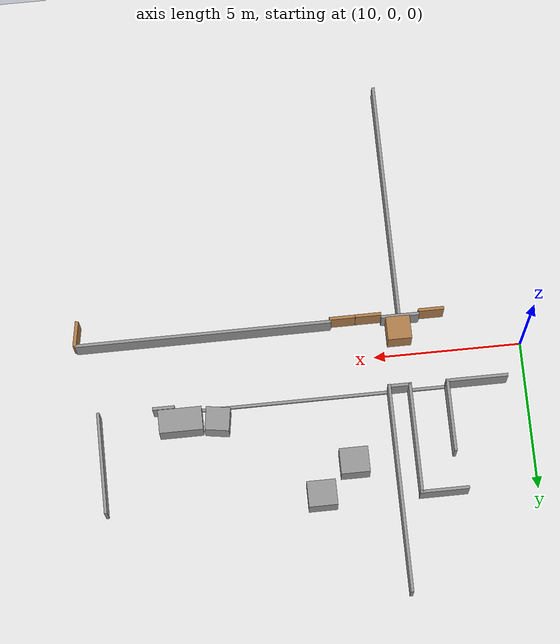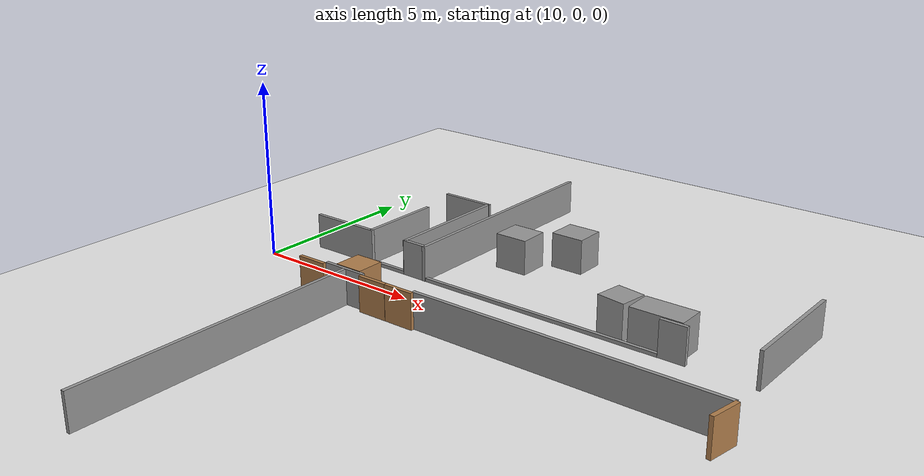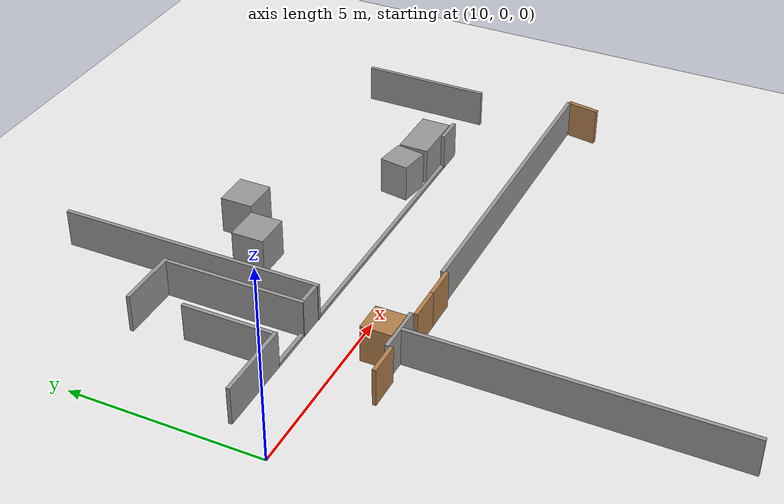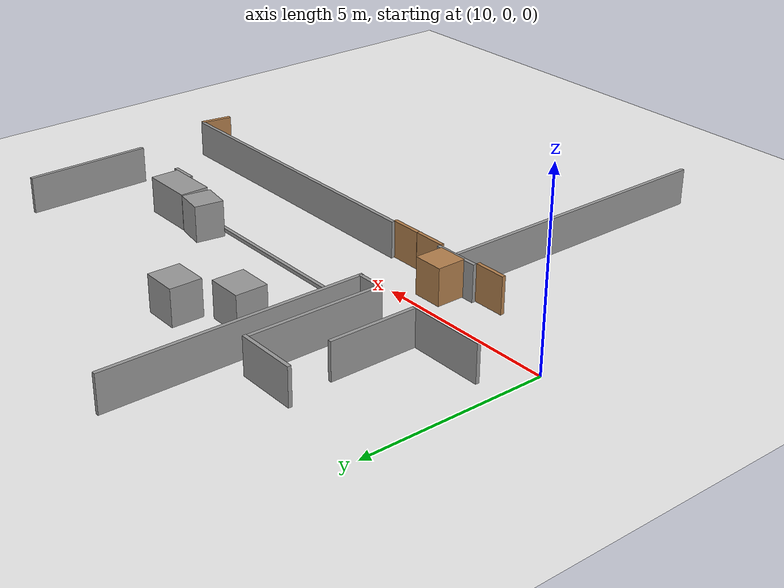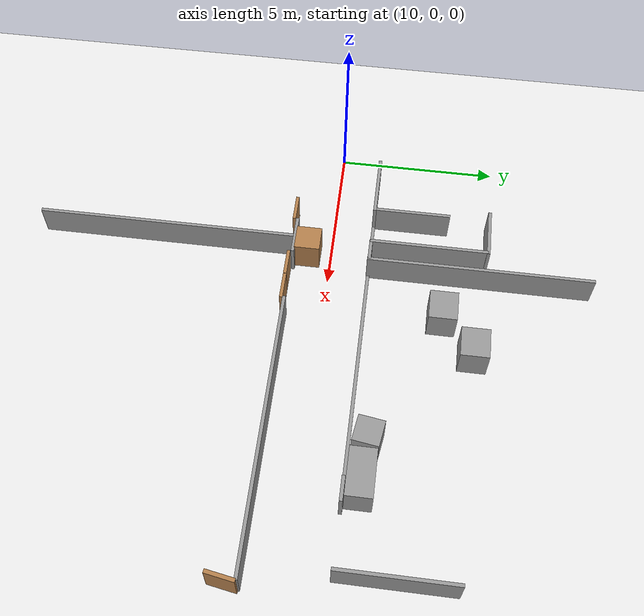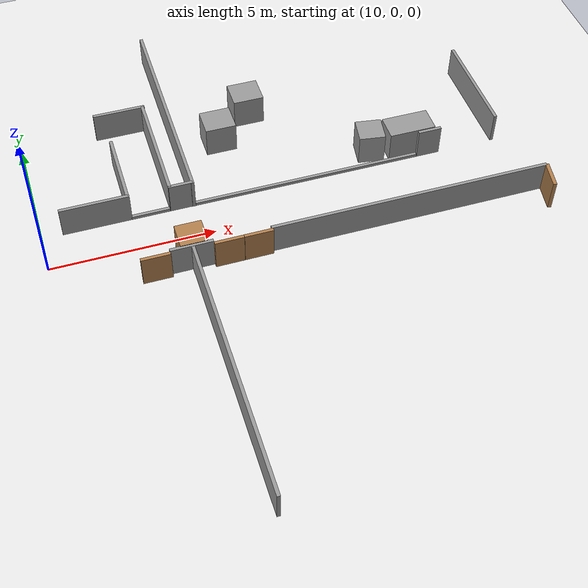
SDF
<sdf version="1.6">
 <world name="default">
  <model name="ground_plane">
   <static>1</static>
   <link name="link">
    <collision name="collision">
     <geometry><plane><normal>0 0 1</normal><size>100 100</size></plane></geometry>
     <surface><friction><ode><mu>100</mu><mu2>50</mu2></ode></friction></surface>
    </collision>
    <visual name="visual">
     <cast_shadows>0</cast_shadows>
     <geometry><plane><normal>0 0 1</normal><size>100 100</size></plane></geometry>
     <material>
      <script><uri>file://media/materials/scripts/gazebo.material</uri><name>Gazebo/WhiteGlow</name></script>
     </material>
    </visual>
   </link>
  </model>
  <model name="L81">
   <link name="link_1_clone_0">
    <pose>15.4924 40.2967 0.017394 0 -0 0</pose>
    <inertial>
     <mass>1.15579</mass>
     <inertia>
      <ixx>0.302392</ixx>
      <ixy>0</ixy>
      <ixz>0</ixz>
      <iyy>0.15645</iyy>
      <iyz>0</iyz>
      <izz>0.266211</izz>
     </inertia>
    </inertial>
    <visual name="visual">
     <geometry><box><size>0.790159 1.46273 1</size></box></geometry>
     <material>
      <lighting>1</lighting>
      <script><uri>file://media/materials/scripts/gazebo.material</uri><name>Gazebo/Grey</name></script>
      <shader type="pixel"><normal_map>__default__</normal_map></shader>
      <ambient>0.3 0.3 0.3 1</ambient>
      <diffuse>0.7 0.7 0.7 1</diffuse>
      <specular>0.01 0.01 0.01 1</specular>
      <emissive>0 0 0 1</emissive>
     </material>
    </visual>
    <collision name="collision">
     <geometry><box><size>0.790159 1.46273 1</size></box></geometry>
     <surface>
      <friction>
       <ode><mu>1</mu><mu2>1</mu2><fdir1>0 0 0</fdir1><slip1>0</slip1><slip2>0</slip2></ode>
       <torsional>
        <coefficient>1</coefficient>
        <patch_radius>0</patch_radius>
        <surface_radius>0</surface_radius>
        <use_patch_radius>1</use_patch_radius>
        <ode><slip>0</slip></ode>
       </torsional>
      </friction>
      <bounce><restitution_coefficient>0</restitution_coefficient><threshold>1e+06</threshold></bounce>
      <contact>
       <collide_without_contact>0</collide_without_contact>
       <collide_without_contact_bitmask>1</collide_without_contact_bitmask>
       <collide_bitmask>1</collide_bitmask>
       <ode>
        <soft_cfm>0</soft_cfm>
        <soft_erp>0.2</soft_erp>
        <kp>1e+13</kp>
        <kd>1</kd>
        <max_vel>0.01</max_vel>
        <min_depth>0</min_depth>
       </ode>
       <bullet>
        <split_impulse>1</split_impulse>
        <split_impulse_penetration_threshold>-0.01</split_impulse_penetration_threshold>
        <soft_cfm>0</soft_cfm>
        <soft_erp>0.2</soft_erp>
        <kp>1e+13</kp>
        <kd>1</kd>
       </bullet>
      </contact>
     </surface>
    </collision>
   </link>
   <link name="link_1_clone_1">
    <pose>15.407 39.061 0.017394 0 -0 -0.15142</pose>
    <inertial>
     <mass>0.639519</mass>
     <inertia>
      <ixx>0.0882035</ixx>
      <ixy>0</ixy>
      <ixz>0</ixz>
      <iyy>0.086567</iyy>
      <iyz>0</iyz>
      <izz>0.068184</izz>
     </inertia>
    </inertial>
    <visual name="visual">
     <geometry><box><size>0.790159 0.809357 1</size></box></geometry>
     <material>
      <lighting>1</lighting>
      <script><uri>file://media/materials/scripts/gazebo.material</uri><name>Gazebo/Grey</name></script>
      <shader type="pixel"><normal_map>__default__</normal_map></shader>
      <ambient>0.3 0.3 0.3 1</ambient>
      <diffuse>0.7 0.7 0.7 1</diffuse>
      <specular>0.01 0.01 0.01 1</specular>
      <emissive>0 0 0 1</emissive>
     </material>
    </visual>
    <collision name="collision">
     <geometry><box><size>0.790159 0.809357 1</size></box></geometry>
     <surface>
      <friction>
       <ode><mu>1</mu><mu2>1</mu2><fdir1>0 0 0</fdir1><slip1>0</slip1><slip2>0</slip2></ode>
       <torsional>
        <coefficient>1</coefficient>
        <patch_radius>0</patch_radius>
        <surface_radius>0</surface_radius>
        <use_patch_radius>1</use_patch_radius>
        <ode><slip>0</slip></ode>
       </torsional>
      </friction>
      <bounce><restitution_coefficient>0</restitution_coefficient><threshold>1e+06</threshold></bounce>
      <contact>
       <collide_without_contact>0</collide_without_contact>
       <collide_without_contact_bitmask>1</collide_without_contact_bitmask>
       <collide_bitmask>1</collide_bitmask>
       <ode>
        <soft_cfm>0</soft_cfm>
        <soft_erp>0.2</soft_erp>
        <kp>1e+13</kp>
        <kd>1</kd>
        <max_vel>0.01</max_vel>
        <min_depth>0</min_depth>
       </ode>
       <bullet>
        <split_impulse>1</split_impulse>
        <split_impulse_penetration_threshold>-0.01</split_impulse_penetration_threshold>
        <soft_cfm>0</soft_cfm>
        <soft_erp>0.2</soft_erp>
        <kp>1e+13</kp>
        <kd>1</kd>
       </bullet>
      </contact>
     </surface>
    </collision>
   </link>
   <link name="link_1_clone_2">
    <pose>17.9179 32.7201 0.017394 0 -0 0</pose>
    <inertial>
     <mass>0.639519</mass>
     <inertia>
      <ixx>0.0882035</ixx>
      <ixy>0</ixy>
      <ixz>0</ixz>
      <iyy>0.086567</iyy>
      <iyz>0</iyz>
      <izz>0.068184</izz>
     </inertia>
    </inertial>
    <visual name="visual">
     <geometry><box><size>0.790159 0.809357 1</size></box></geometry>
     <material>
      <lighting>1</lighting>
      <script><uri>file://media/materials/scripts/gazebo.material</uri><name>Gazebo/Wood</name></script>
      <shader type="pixel"><normal_map>__default__</normal_map></shader>
      <ambient>0.3 0.3 0.3 1</ambient>
      <diffuse>0.7 0.7 0.7 1</diffuse>
      <specular>0.01 0.01 0.01 1</specular>
      <emissive>0 0 0 1</emissive>
     </material>
    </visual>
    <collision name="collision">
     <geometry><box><size>0.790159 0.809357 1</size></box></geometry>
     <surface>
      <friction>
       <ode><mu>1</mu><mu2>1</mu2><fdir1>0 0 0</fdir1><slip1>0</slip1><slip2>0</slip2></ode>
       <torsional>
        <coefficient>1</coefficient>
        <patch_radius>0</patch_radius>
        <surface_radius>0</surface_radius>
        <use_patch_radius>1</use_patch_radius>
        <ode><slip>0</slip></ode>
       </torsional>
      </friction>
      <bounce><restitution_coefficient>0</restitution_coefficient><threshold>1e+06</threshold></bounce>
      <contact>
       <collide_without_contact>0</collide_without_contact>
       <collide_without_contact_bitmask>1</collide_without_contact_bitmask>
       <collide_bitmask>1</collide_bitmask>
       <ode>
        <soft_cfm>0</soft_cfm>
        <soft_erp>0.2</soft_erp>
        <kp>1e+13</kp>
        <kd>1</kd>
        <max_vel>0.01</max_vel>
        <min_depth>0</min_depth>
       </ode>
       <bullet>
        <split_impulse>1</split_impulse>
        <split_impulse_penetration_threshold>-0.01</split_impulse_penetration_threshold>
        <soft_cfm>0</soft_cfm>
        <soft_erp>0.2</soft_erp>
        <kp>1e+13</kp>
        <kd>1</kd>
       </bullet>
      </contact>
     </surface>
    </collision>
   </link>
   <link name="link_clone_0_clone_0_clone_clone_0">
    <pose>18.3442 32.63 -0 0 -0 0</pose>
    <inertial>
     <mass>0.0720999</mass>
     <inertia>
      <ixx>0.0158378</ixx>
      <ixy>0</ixy>
      <ixz>0</ixz>
      <iyy>0.00606841</iyy>
      <iyz>0</iyz>
      <izz>0.00988954</izz>
     </inertia>
    </inertial>
    <visual name="visual">
     <geometry><box><size>0.1 1.27905 1</size></box></geometry>
     <material>
      <script><name>Gazebo/Grey</name><uri>file://media/materials/scripts/gazebo.material</uri></script>
      <shader type="pixel"><normal_map>__default__</normal_map></shader>
      <ambient>0.3 0.3 0.3 1</ambient>
      <diffuse>0.7 0.7 0.7 1</diffuse>
      <specular>0.01 0.01 0.01 1</specular>
      <emissive>0 0 0 1</emissive>
     </material>
    </visual>
    <collision name="collision">
     <geometry><box><size>0.1 1.27905 1</size></box></geometry>
     <surface>
      <friction>
       <ode><mu>1</mu><mu2>1</mu2><fdir1>0 0 0</fdir1><slip1>0</slip1><slip2>0</slip2></ode>
       <torsional>
        <coefficient>1</coefficient>
        <patch_radius>0</patch_radius>
        <surface_radius>0</surface_radius>
        <use_patch_radius>1</use_patch_radius>
        <ode><slip>0</slip></ode>
       </torsional>
      </friction>
      <bounce><restitution_coefficient>0</restitution_coefficient><threshold>1e+06</threshold></bounce>
      <contact>
       <collide_without_contact>0</collide_without_contact>
       <collide_without_contact_bitmask>1</collide_without_contact_bitmask>
       <collide_bitmask>1</collide_bitmask>
       <ode>
        <soft_cfm>0</soft_cfm>
        <soft_erp>0.2</soft_erp>
        <kp>1e+13</kp>
        <kd>1</kd>
        <max_vel>0.01</max_vel>
        <min_depth>0</min_depth>
       </ode>
       <bullet>
        <split_impulse>1</split_impulse>
        <split_impulse_penetration_threshold>-0.01</split_impulse_penetration_threshold>
        <soft_cfm>0</soft_cfm>
        <soft_erp>0.2</soft_erp>
        <kp>1e+13</kp>
        <kd>1</kd>
       </bullet>
      </contact>
     </surface>
    </collision>
   </link>
   <link name="link_clone_0_clone_0_clone_clone_clone_clone">
    <pose>18.3589 39.2844 -0 0 -0 0</pose>
    <inertial>
     <mass>0.486482</mass>
     <inertia>
      <ixx>3.05999</ixx>
      <ixy>0</ixy>
      <ixz>0</ixz>
      <iyy>0.0409455</iyy>
      <iyz>0</iyz>
      <izz>3.01985</izz>
     </inertia>
    </inertial>
    <visual name="visual">
     <geometry><box><size>0.1 8.63021 1</size></box></geometry>
     <material>
      <script><name>Gazebo/Grey</name><uri>file://media/materials/scripts/gazebo.material</uri></script>
      <shader type="pixel"><normal_map>__default__</normal_map></shader>
      <ambient>0.3 0.3 0.3 1</ambient>
      <diffuse>0.7 0.7 0.7 1</diffuse>
      <specular>0.01 0.01 0.01 1</specular>
      <emissive>0 0 0 1</emissive>
     </material>
    </visual>
    <collision name="collision">
     <geometry><box><size>0.1 8.63021 1</size></box></geometry>
     <surface>
      <friction>
       <ode><mu>1</mu><mu2>1</mu2><fdir1>0 0 0</fdir1><slip1>0</slip1><slip2>0</slip2></ode>
       <torsional>
        <coefficient>1</coefficient>
        <patch_radius>0</patch_radius>
        <surface_radius>0</surface_radius>
        <use_patch_radius>1</use_patch_radius>
        <ode><slip>0</slip></ode>
       </torsional>
      </friction>
      <bounce><restitution_coefficient>0</restitution_coefficient><threshold>1e+06</threshold></bounce>
      <contact>
       <collide_without_contact>0</collide_without_contact>
       <collide_without_contact_bitmask>1</collide_without_contact_bitmask>
       <collide_bitmask>1</collide_bitmask>
       <ode>
        <soft_cfm>0</soft_cfm>
        <soft_erp>0.2</soft_erp>
        <kp>1e+13</kp>
        <kd>1</kd>
        <max_vel>0.01</max_vel>
        <min_depth>0</min_depth>
       </ode>
       <bullet>
        <split_impulse>1</split_impulse>
        <split_impulse_penetration_threshold>-0.01</split_impulse_penetration_threshold>
        <soft_cfm>0</soft_cfm>
        <soft_erp>0.2</soft_erp>
        <kp>1e+13</kp>
        <kd>1</kd>
       </bullet>
      </contact>
     </surface>
    </collision>
   </link>
   <link name="link_clone_0_clone_clone_0_clone_clone_clone_1_clone">
    <pose>15.943 30.3086 0 0 -0 0</pose>
    <inertial>
     <mass>1.01517</mass>
     <inertia><ixx>5.4708</ixx><ixy>0</ixy><ixz>0</ixz><iyy>0.0854436</iyy><iyz>0</iyz><izz>5.38705</izz></inertia>
    </inertial>
    <visual name="visual">
     <geometry><box><size>0.1 2.09 1</size></box></geometry>
     <material>
      <script><name>Gazebo/Grey</name><uri>file://media/materials/scripts/gazebo.material</uri></script>
      <shader type="pixel"><normal_map>__default__</normal_map></shader>
      <ambient>0.3 0.3 0.3 1</ambient>
      <diffuse>0.7 0.7 0.7 1</diffuse>
      <specular>0.01 0.01 0.01 1</specular>
      <emissive>0 0 0 1</emissive>
     </material>
    </visual>
    <collision name="collision">
     <geometry><box><size>0.1 2.09 1</size></box></geometry>
     <surface>
      <friction>
       <ode><mu>1</mu><mu2>1</mu2><fdir1>0 0 0</fdir1><slip1>0</slip1><slip2>0</slip2></ode>
       <torsional>
        <coefficient>1</coefficient>
        <patch_radius>0</patch_radius>
        <surface_radius>0</surface_radius>
        <use_patch_radius>1</use_patch_radius>
        <ode><slip>0</slip></ode>
       </torsional>
      </friction>
      <bounce><restitution_coefficient>0</restitution_coefficient><threshold>1e+06</threshold></bounce>
      <contact>
       <collide_without_contact>0</collide_without_contact>
       <collide_without_contact_bitmask>1</collide_without_contact_bitmask>
       <collide_bitmask>1</collide_bitmask>
       <ode>
        <soft_cfm>0</soft_cfm>
        <soft_erp>0.2</soft_erp>
        <kp>1e+13</kp>
        <kd>1</kd>
        <max_vel>0.01</max_vel>
        <min_depth>0</min_depth>
       </ode>
       <bullet>
        <split_impulse>1</split_impulse>
        <split_impulse_penetration_threshold>-0.01</split_impulse_penetration_threshold>
        <soft_cfm>0</soft_cfm>
        <soft_erp>0.2</soft_erp>
        <kp>1e+13</kp>
        <kd>1</kd>
       </bullet>
      </contact>
     </surface>
    </collision>
   </link>
   <link name="link_clone_0_clone_clone_0_clone_clone_clone_1_clone_0">
    <pose>15.9456 32.8938 0 0 -0 0</pose>
    <inertial>
     <mass>0.262825</mass>
     <inertia>
      <ixx>0.0337428</ixx>
      <ixy>0</ixy>
      <ixz>0</ixz>
      <iyy>0.0221211</iyy>
      <iyz>0</iyz>
      <izz>0.0120597</izz>
     </inertia>
    </inertial>
    <visual name="visual">
     <geometry><box><size>0.1 0.735267 1</size></box></geometry>
     <material>
      <script><name>Gazebo/Grey</name><uri>file://media/materials/scripts/gazebo.material</uri></script>
      <shader type="pixel"><normal_map>__default__</normal_map></shader>
      <ambient>0.3 0.3 0.3 1</ambient>
      <diffuse>0.7 0.7 0.7 1</diffuse>
      <specular>0.01 0.01 0.01 1</specular>
      <emissive>0 0 0 1</emissive>
     </material>
    </visual>
    <collision name="collision">
     <geometry><box><size>0.1 0.735267 1</size></box></geometry>
     <surface>
      <friction>
       <ode><mu>1</mu><mu2>1</mu2><fdir1>0 0 0</fdir1><slip1>0</slip1><slip2>0</slip2></ode>
       <torsional>
        <coefficient>1</coefficient>
        <patch_radius>0</patch_radius>
        <surface_radius>0</surface_radius>
        <use_patch_radius>1</use_patch_radius>
        <ode><slip>0</slip></ode>
       </torsional>
      </friction>
      <bounce><restitution_coefficient>0</restitution_coefficient><threshold>1e+06</threshold></bounce>
      <contact>
       <collide_without_contact>0</collide_without_contact>
       <collide_without_contact_bitmask>1</collide_without_contact_bitmask>
       <collide_bitmask>1</collide_bitmask>
       <ode>
        <soft_cfm>0</soft_cfm>
        <soft_erp>0.2</soft_erp>
        <kp>1e+13</kp>
        <kd>1</kd>
        <max_vel>0.01</max_vel>
        <min_depth>0</min_depth>
       </ode>
       <bullet>
        <split_impulse>1</split_impulse>
        <split_impulse_penetration_threshold>-0.01</split_impulse_penetration_threshold>
        <soft_cfm>0</soft_cfm>
        <soft_erp>0.2</soft_erp>
        <kp>1e+13</kp>
        <kd>1</kd>
       </bullet>
      </contact>
     </surface>
    </collision>
   </link>
   <link name="link_clone_0_clone_clone_0_clone_clone_clone_1_clone_0_clone">
    <pose>15.9496 40.8197 -0 0 -0 0</pose>
    <inertial>
     <mass>0.262825</mass>
     <inertia>
      <ixx>0.0337428</ixx>
      <ixy>0</ixy>
      <ixz>0</ixz>
      <iyy>0.0221211</iyy>
      <iyz>0</iyz>
      <izz>0.0120597</izz>
     </inertia>
    </inertial>
    <visual name="visual">
     <geometry><box><size>0.1 0.735267 1</size></box></geometry>
     <material>
      <script><name>Gazebo/Grey</name><uri>file://media/materials/scripts/gazebo.material</uri></script>
      <shader type="pixel"><normal_map>__default__</normal_map></shader>
      <ambient>0.3 0.3 0.3 1</ambient>
      <diffuse>0.7 0.7 0.7 1</diffuse>
      <specular>0.01 0.01 0.01 1</specular>
      <emissive>0 0 0 1</emissive>
     </material>
    </visual>
    <collision name="collision">
     <geometry><box><size>0.1 0.735267 1</size></box></geometry>
     <surface>
      <friction>
       <ode><mu>1</mu><mu2>1</mu2><fdir1>0 0 0</fdir1><slip1>0</slip1><slip2>0</slip2></ode>
       <torsional>
        <coefficient>1</coefficient>
        <patch_radius>0</patch_radius>
        <surface_radius>0</surface_radius>
        <use_patch_radius>1</use_patch_radius>
        <ode><slip>0</slip></ode>
       </torsional>
      </friction>
      <bounce><restitution_coefficient>0</restitution_coefficient><threshold>1e+06</threshold></bounce>
      <contact>
       <collide_without_contact>0</collide_without_contact>
       <collide_without_contact_bitmask>1</collide_without_contact_bitmask>
       <collide_bitmask>1</collide_bitmask>
       <ode>
        <soft_cfm>0</soft_cfm>
        <soft_erp>0.2</soft_erp>
        <kp>1e+13</kp>
        <kd>1</kd>
        <max_vel>0.01</max_vel>
        <min_depth>0</min_depth>
       </ode>
       <bullet>
        <split_impulse>1</split_impulse>
        <split_impulse_penetration_threshold>-0.01</split_impulse_penetration_threshold>
        <soft_cfm>0</soft_cfm>
        <soft_erp>0.2</soft_erp>
        <kp>1e+13</kp>
        <kd>1</kd>
       </bullet>
      </contact>
     </surface>
    </collision>
   </link>
   <link name="link_clone_0_clone_clone_0_clone_clone_clone_1_clone_0_clone_clone">
    <pose>15.9465 36.8536 -0.45475 0 -0 0</pose>
    <inertial>
     <mass>2.56764</mass>
     <inertia><ixx>11.2543</ixx><ixy>0</ixy><ixz>0</ixz><iyy>0.21611</iyy><iyz>0</iyz><izz>11.0424</izz></inertia>
    </inertial>
    <visual name="visual">
     <geometry><box><size>0.1 7.18313 0.1</size></box></geometry>
     <material>
      <script><name>Gazebo/Grey</name><uri>file://media/materials/scripts/gazebo.material</uri></script>
      <shader type="pixel"><normal_map>__default__</normal_map></shader>
      <ambient>0.3 0.3 0.3 1</ambient>
      <diffuse>0.7 0.7 0.7 1</diffuse>
      <specular>0.01 0.01 0.01 1</specular>
      <emissive>0 0 0 1</emissive>
     </material>
    </visual>
    <collision name="collision">
     <geometry><box><size>0.1 7.18313 0.1</size></box></geometry>
     <surface>
      <friction>
       <ode><mu>1</mu><mu2>1</mu2><fdir1>0 0 0</fdir1><slip1>0</slip1><slip2>0</slip2></ode>
       <torsional>
        <coefficient>1</coefficient>
        <patch_radius>0</patch_radius>
        <surface_radius>0</surface_radius>
        <use_patch_radius>1</use_patch_radius>
        <ode><slip>0</slip></ode>
       </torsional>
      </friction>
      <bounce><restitution_coefficient>0</restitution_coefficient><threshold>1e+06</threshold></bounce>
      <contact>
       <collide_without_contact>0</collide_without_contact>
       <collide_without_contact_bitmask>1</collide_without_contact_bitmask>
       <collide_bitmask>1</collide_bitmask>
       <ode>
        <soft_cfm>0</soft_cfm>
        <soft_erp>0.2</soft_erp>
        <kp>1e+13</kp>
        <kd>1</kd>
        <max_vel>0.01</max_vel>
        <min_depth>0</min_depth>
       </ode>
       <bullet>
        <split_impulse>1</split_impulse>
        <split_impulse_penetration_threshold>-0.01</split_impulse_penetration_threshold>
        <soft_cfm>0</soft_cfm>
        <soft_erp>0.2</soft_erp>
        <kp>1e+13</kp>
        <kd>1</kd>
       </bullet>
      </contact>
     </surface>
    </collision>
   </link>
   <link name="link_clone_0_clone_clone_0_clone_clone_clone_1_clone_0_clone_clone_clone_2_clone_0">
    <pose>15.9435 31.9245 -0.451727 0 -0 0</pose>
    <inertial>
     <mass>0.421538</mass>
     <inertia>
      <ixx>0.0839802</ixx>
      <ixy>0</ixy>
      <ixz>0</ixz>
      <iyy>0.0354794</iyy>
      <iyz>0</iyz>
      <izz>0.0492034</izz>
     </inertia>
    </inertial>
    <visual name="visual">
     <geometry><box><size>0.1 1.17927 0.1</size></box></geometry>
     <material>
      <script><name>Gazebo/Grey</name><uri>file://media/materials/scripts/gazebo.material</uri></script>
      <shader type="pixel"><normal_map>__default__</normal_map></shader>
      <ambient>0.3 0.3 0.3 1</ambient>
      <diffuse>0.7 0.7 0.7 1</diffuse>
      <specular>0.01 0.01 0.01 1</specular>
      <emissive>0 0 0 1</emissive>
     </material>
    </visual>
    <collision name="collision">
     <geometry><box><size>0.1 1.17927 0.1</size></box></geometry>
     <surface>
      <friction>
       <ode><mu>1</mu><mu2>1</mu2><fdir1>0 0 0</fdir1><slip1>0</slip1><slip2>0</slip2></ode>
       <torsional>
        <coefficient>1</coefficient>
        <patch_radius>0</patch_radius>
        <surface_radius>0</surface_radius>
        <use_patch_radius>1</use_patch_radius>
        <ode><slip>0</slip></ode>
       </torsional>
      </friction>
      <bounce><restitution_coefficient>0</restitution_coefficient><threshold>1e+06</threshold></bounce>
      <contact>
       <collide_without_contact>0</collide_without_contact>
       <collide_without_contact_bitmask>1</collide_without_contact_bitmask>
       <collide_bitmask>1</collide_bitmask>
       <ode>
        <soft_cfm>0</soft_cfm>
        <soft_erp>0.2</soft_erp>
        <kp>1e+13</kp>
        <kd>1</kd>
        <max_vel>0.01</max_vel>
        <min_depth>0</min_depth>
       </ode>
       <bullet>
        <split_impulse>1</split_impulse>
        <split_impulse_penetration_threshold>-0.01</split_impulse_penetration_threshold>
        <soft_cfm>0</soft_cfm>
        <soft_erp>0.2</soft_erp>
        <kp>1e+13</kp>
        <kd>1</kd>
       </bullet>
      </contact>
     </surface>
    </collision>
   </link>
   <link name="link_clone_0_clone_clone_0_clone_clone_clone_1_clone_1_clone_clone_clone_0">
    <pose>12.2836 31.8092 0 0 -0 0</pose>
    <inertial>
     <mass>0.247554</mass>
     <inertia>
      <ixx>0.0756975</ixx>
      <ixy>0</ixy>
      <ixz>0</ixz>
      <iyy>0.0208358</iyy>
      <iyz>0</iyz>
      <izz>0.0552744</izz>
     </inertia>
    </inertial>
    <visual name="visual">
     <geometry><box><size>0.1 1.63383 1</size></box></geometry>
     <material>
      <script><name>Gazebo/Grey</name><uri>file://media/materials/scripts/gazebo.material</uri></script>
      <shader type="pixel"><normal_map>__default__</normal_map></shader>
      <ambient>0.3 0.3 0.3 1</ambient>
      <diffuse>0.7 0.7 0.7 1</diffuse>
      <specular>0.01 0.01 0.01 1</specular>
      <emissive>0 0 0 1</emissive>
     </material>
    </visual>
    <collision name="collision">
     <geometry><box><size>0.1 1.63383 1</size></box></geometry>
     <surface>
      <friction>
       <ode><mu>1</mu><mu2>1</mu2><fdir1>0 0 0</fdir1><slip1>0</slip1><slip2>0</slip2></ode>
       <torsional>
        <coefficient>1</coefficient>
        <patch_radius>0</patch_radius>
        <surface_radius>0</surface_radius>
        <use_patch_radius>1</use_patch_radius>
        <ode><slip>0</slip></ode>
       </torsional>
      </friction>
      <bounce><restitution_coefficient>0</restitution_coefficient><threshold>1e+06</threshold></bounce>
      <contact>
       <collide_without_contact>0</collide_without_contact>
       <collide_without_contact_bitmask>1</collide_without_contact_bitmask>
       <collide_bitmask>1</collide_bitmask>
       <ode>
        <soft_cfm>0</soft_cfm>
        <soft_erp>0.2</soft_erp>
        <kp>1e+13</kp>
        <kd>1</kd>
        <max_vel>0.01</max_vel>
        <min_depth>0</min_depth>
       </ode>
       <bullet>
        <split_impulse>1</split_impulse>
        <split_impulse_penetration_threshold>-0.01</split_impulse_penetration_threshold>
        <soft_cfm>0</soft_cfm>
        <soft_erp>0.2</soft_erp>
        <kp>1e+13</kp>
        <kd>1</kd>
       </bullet>
      </contact>
     </surface>
    </collision>
   </link>
   <link name="link_clone_0_clone_clone_0_clone_clone_clone_2_clone_clone_0_clone_3_clone">
    <pose>13.5651 34.6726 0 0 -0 0</pose>
    <inertial>
     <mass>9.70174</mass>
     <inertia><ixx>1.55976</ixx><ixy>0</ixy><ixz>0</ixz><iyy>1.40994</iyy><iyz>0</iyz><izz>1.35274</izz></inertia>
    </inertial>
    <visual name="visual">
     <geometry><box><size>0.862521 0.96398 1</size></box></geometry>
     <material>
      <script><name>Gazebo/Grey</name><uri>file://media/materials/scripts/gazebo.material</uri></script>
      <shader type="pixel"><normal_map>__default__</normal_map></shader>
      <ambient>0.3 0.3 0.3 1</ambient>
      <diffuse>0.7 0.7 0.7 1</diffuse>
      <specular>0.01 0.01 0.01 1</specular>
      <emissive>0 0 0 1</emissive>
     </material>
    </visual>
    <collision name="collision">
     <geometry><box><size>0.862521 0.96398 1</size></box></geometry>
     <surface>
      <friction>
       <ode><mu>1</mu><mu2>1</mu2><fdir1>0 0 0</fdir1><slip1>0</slip1><slip2>0</slip2></ode>
       <torsional>
        <coefficient>1</coefficient>
        <patch_radius>0</patch_radius>
        <surface_radius>0</surface_radius>
        <use_patch_radius>1</use_patch_radius>
        <ode><slip>0</slip></ode>
       </torsional>
      </friction>
      <bounce><restitution_coefficient>0</restitution_coefficient><threshold>1e+06</threshold></bounce>
      <contact>
       <collide_without_contact>0</collide_without_contact>
       <collide_without_contact_bitmask>1</collide_without_contact_bitmask>
       <collide_bitmask>1</collide_bitmask>
       <ode>
        <soft_cfm>0</soft_cfm>
        <soft_erp>0.2</soft_erp>
        <kp>1e+13</kp>
        <kd>1</kd>
        <max_vel>0.01</max_vel>
        <min_depth>0</min_depth>
       </ode>
       <bullet>
        <split_impulse>1</split_impulse>
        <split_impulse_penetration_threshold>-0.01</split_impulse_penetration_threshold>
        <soft_cfm>0</soft_cfm>
        <soft_erp>0.2</soft_erp>
        <kp>1e+13</kp>
        <kd>1</kd>
       </bullet>
      </contact>
     </surface>
    </collision>
   </link>
   <link name="link_clone_0_clone_clone_0_clone_clone_clone_2_clone_clone_0_clone_3_clone_2">
    <pose>12.5704 35.8499 -0 0 -0 0</pose>
    <inertial>
     <mass>9.70174</mass>
     <inertia><ixx>1.55976</ixx><ixy>0</ixy><ixz>0</ixz><iyy>1.40994</iyy><iyz>0</iyz><izz>1.35274</izz></inertia>
    </inertial>
    <visual name="visual">
     <geometry><box><size>0.862521 0.96398 1</size></box></geometry>
     <material>
      <script><name>Gazebo/Grey</name><uri>file://media/materials/scripts/gazebo.material</uri></script>
      <shader type="pixel"><normal_map>__default__</normal_map></shader>
      <ambient>0.3 0.3 0.3 1</ambient>
      <diffuse>0.7 0.7 0.7 1</diffuse>
      <specular>0.01 0.01 0.01 1</specular>
      <emissive>0 0 0 1</emissive>
     </material>
    </visual>
    <collision name="collision">
     <geometry><box><size>0.862521 0.96398 1</size></box></geometry>
     <surface>
      <friction>
       <ode><mu>1</mu><mu2>1</mu2><fdir1>0 0 0</fdir1><slip1>0</slip1><slip2>0</slip2></ode>
       <torsional>
        <coefficient>1</coefficient>
        <patch_radius>0</patch_radius>
        <surface_radius>0</surface_radius>
        <use_patch_radius>1</use_patch_radius>
        <ode><slip>0</slip></ode>
       </torsional>
      </friction>
      <bounce><restitution_coefficient>0</restitution_coefficient><threshold>1e+06</threshold></bounce>
      <contact>
       <collide_without_contact>0</collide_without_contact>
       <collide_without_contact_bitmask>1</collide_without_contact_bitmask>
       <collide_bitmask>1</collide_bitmask>
       <ode>
        <soft_cfm>0</soft_cfm>
        <soft_erp>0.2</soft_erp>
        <kp>1e+13</kp>
        <kd>1</kd>
        <max_vel>0.01</max_vel>
        <min_depth>0</min_depth>
       </ode>
       <bullet>
        <split_impulse>1</split_impulse>
        <split_impulse_penetration_threshold>-0.01</split_impulse_penetration_threshold>
        <soft_cfm>0</soft_cfm>
        <soft_erp>0.2</soft_erp>
        <kp>1e+13</kp>
        <kd>1</kd>
       </bullet>
      </contact>
     </surface>
    </collision>
   </link>
   <link name="link_clone_0_clone_clone_0_clone_clone_clone_2_clone_clone_clone_0_clone_clone_clone">
    <pose>18.7834 43.5436 0 -0 -0 -1.74206</pose>
    <inertial>
     <mass>1.14264</mass>
     <inertia>
      <ixx>0.165711</ixx>
      <ixy>0</ixy>
      <ixz>0</ixz>
      <iyy>0.0964534</iyy>
      <iyz>0</iyz>
      <izz>0.0717244</izz>
     </inertia>
    </inertial>
    <visual name="visual">
     <geometry><box><size>0.11381 0.860405 1</size></box></geometry>
     <material>
      <script><name>Gazebo/Wood</name><uri>file://media/materials/scripts/gazebo.material</uri></script>
      <shader type="pixel"><normal_map>__default__</normal_map></shader>
      <ambient>0.3 0.3 0.3 1</ambient>
      <diffuse>0.7 0.7 0.7 1</diffuse>
      <specular>0.01 0.01 0.01 1</specular>
      <emissive>0 0 0 1</emissive>
     </material>
    </visual>
    <collision name="collision">
     <geometry><box><size>0.11381 0.860405 1</size></box></geometry>
     <surface>
      <friction>
       <ode><mu>1</mu><mu2>1</mu2><fdir1>0 0 0</fdir1><slip1>0</slip1><slip2>0</slip2></ode>
       <torsional>
        <coefficient>1</coefficient>
        <patch_radius>0</patch_radius>
        <surface_radius>0</surface_radius>
        <use_patch_radius>1</use_patch_radius>
        <ode><slip>0</slip></ode>
       </torsional>
      </friction>
      <bounce><restitution_coefficient>0</restitution_coefficient><threshold>1e+06</threshold></bounce>
      <contact>
       <collide_without_contact>0</collide_without_contact>
       <collide_without_contact_bitmask>1</collide_without_contact_bitmask>
       <collide_bitmask>1</collide_bitmask>
       <ode>
        <soft_cfm>0</soft_cfm>
        <soft_erp>0.2</soft_erp>
        <kp>1e+13</kp>
        <kd>1</kd>
        <max_vel>0.01</max_vel>
        <min_depth>0</min_depth>
       </ode>
       <bullet>
        <split_impulse>1</split_impulse>
        <split_impulse_penetration_threshold>-0.01</split_impulse_penetration_threshold>
        <soft_cfm>0</soft_cfm>
        <soft_erp>0.2</soft_erp>
        <kp>1e+13</kp>
        <kd>1</kd>
       </bullet>
      </contact>
     </surface>
    </collision>
   </link>
   <link name="link_clone_0_clone_clone_0_clone_clone_clone_2_clone_clone_clone_0_clone_clone_clone_clone">
    <pose>18.4572 33.7005 -0 0 -0 0</pose>
    <inertial>
     <mass>1.01517</mass>
     <inertia><ixx>5.4708</ixx><ixy>0</ixy><ixz>0</ixz><iyy>0.0854436</iyy><iyz>0</iyz><izz>5.38705</izz></inertia>
    </inertial>
    <visual name="visual">
     <geometry><box><size>0.1 0.87 1</size></box></geometry>
     <material>
      <script><name>Gazebo/Wood</name><uri>file://media/materials/scripts/gazebo.material</uri></script>
      <shader type="pixel"><normal_map>__default__</normal_map></shader>
      <ambient>0.3 0.3 0.3 1</ambient>
      <diffuse>0.7 0.7 0.7 1</diffuse>
      <specular>0.01 0.01 0.01 1</specular>
      <emissive>0 0 0 1</emissive>
     </material>
    </visual>
    <collision name="collision">
     <geometry><box><size>0.1 0.87 1</size></box></geometry>
     <surface>
      <friction>
       <ode><mu>1</mu><mu2>1</mu2><fdir1>0 0 0</fdir1><slip1>0</slip1><slip2>0</slip2></ode>
       <torsional>
        <coefficient>1</coefficient>
        <patch_radius>0</patch_radius>
        <surface_radius>0</surface_radius>
        <use_patch_radius>1</use_patch_radius>
        <ode><slip>0</slip></ode>
       </torsional>
      </friction>
      <bounce><restitution_coefficient>0</restitution_coefficient><threshold>1e+06</threshold></bounce>
      <contact>
       <collide_without_contact>0</collide_without_contact>
       <collide_without_contact_bitmask>1</collide_without_contact_bitmask>
       <collide_bitmask>1</collide_bitmask>
       <ode>
        <soft_cfm>0</soft_cfm>
        <soft_erp>0.2</soft_erp>
        <kp>1e+13</kp>
        <kd>1</kd>
        <max_vel>0.01</max_vel>
        <min_depth>0</min_depth>
       </ode>
       <bullet>
        <split_impulse>1</split_impulse>
        <split_impulse_penetration_threshold>-0.01</split_impulse_penetration_threshold>
        <soft_cfm>0</soft_cfm>
        <soft_erp>0.2</soft_erp>
        <kp>1e+13</kp>
        <kd>1</kd>
       </bullet>
      </contact>
     </surface>
    </collision>
   </link>
   <link name="link_clone_0_clone_clone_0_clone_clone_clone_2_clone_clone_clone_0_clone_clone_clone_clone_clone">
    <pose>18.4544 34.5748 -0 0 -0 0</pose>
    <inertial>
     <mass>1.01517</mass>
     <inertia><ixx>5.4708</ixx><ixy>0</ixy><ixz>0</ixz><iyy>0.0854436</iyy><iyz>0</iyz><izz>5.38705</izz></inertia>
    </inertial>
    <visual name="visual">
     <geometry><box><size>0.1 0.87 1</size></box></geometry>
     <material>
      <script><name>Gazebo/Wood</name><uri>file://media/materials/scripts/gazebo.material</uri></script>
      <shader type="pixel"><normal_map>__default__</normal_map></shader>
      <ambient>0.3 0.3 0.3 1</ambient>
      <diffuse>0.7 0.7 0.7 1</diffuse>
      <specular>0.01 0.01 0.01 1</specular>
      <emissive>0 0 0 1</emissive>
     </material>
    </visual>
    <collision name="collision">
     <geometry><box><size>0.1 0.87 1</size></box></geometry>
     <surface>
      <friction>
       <ode><mu>1</mu><mu2>1</mu2><fdir1>0 0 0</fdir1><slip1>0</slip1><slip2>0</slip2></ode>
       <torsional>
        <coefficient>1</coefficient>
        <patch_radius>0</patch_radius>
        <surface_radius>0</surface_radius>
        <use_patch_radius>1</use_patch_radius>
        <ode><slip>0</slip></ode>
       </torsional>
      </friction>
      <bounce><restitution_coefficient>0</restitution_coefficient><threshold>1e+06</threshold></bounce>
      <contact>
       <collide_without_contact>0</collide_without_contact>
       <collide_without_contact_bitmask>1</collide_without_contact_bitmask>
       <collide_bitmask>1</collide_bitmask>
       <ode>
        <soft_cfm>0</soft_cfm>
        <soft_erp>0.2</soft_erp>
        <kp>1e+13</kp>
        <kd>1</kd>
        <max_vel>0.01</max_vel>
        <min_depth>0</min_depth>
       </ode>
       <bullet>
        <split_impulse>1</split_impulse>
        <split_impulse_penetration_threshold>-0.01</split_impulse_penetration_threshold>
        <soft_cfm>0</soft_cfm>
        <soft_erp>0.2</soft_erp>
        <kp>1e+13</kp>
        <kd>1</kd>
       </bullet>
      </contact>
     </surface>
    </collision>
   </link>
   <link name="link_clone_0_clone_clone_0_clone_clone_clone_2_clone_clone_clone_0_clone_clone_clone_clone_clone_0">
    <pose>18.4563 31.5679 -0 0 -0 0</pose>
    <inertial>
     <mass>1.01517</mass>
     <inertia><ixx>5.4708</ixx><ixy>0</ixy><ixz>0</ixz><iyy>0.0854436</iyy><iyz>0</iyz><izz>5.38705</izz></inertia>
    </inertial>
    <visual name="visual">
     <geometry><box><size>0.1 0.87 1</size></box></geometry>
     <material>
      <script><name>Gazebo/Wood</name><uri>file://media/materials/scripts/gazebo.material</uri></script>
      <shader type="pixel"><normal_map>__default__</normal_map></shader>
      <ambient>0.3 0.3 0.3 1</ambient>
      <diffuse>0.7 0.7 0.7 1</diffuse>
      <specular>0.01 0.01 0.01 1</specular>
      <emissive>0 0 0 1</emissive>
     </material>
    </visual>
    <collision name="collision">
     <geometry><box><size>0.1 0.87 1</size></box></geometry>
     <surface>
      <friction>
       <ode><mu>1</mu><mu2>1</mu2><fdir1>0 0 0</fdir1><slip1>0</slip1><slip2>0</slip2></ode>
       <torsional>
        <coefficient>1</coefficient>
        <patch_radius>0</patch_radius>
        <surface_radius>0</surface_radius>
        <use_patch_radius>1</use_patch_radius>
        <ode><slip>0</slip></ode>
       </torsional>
      </friction>
      <bounce><restitution_coefficient>0</restitution_coefficient><threshold>1e+06</threshold></bounce>
      <contact>
       <collide_without_contact>0</collide_without_contact>
       <collide_without_contact_bitmask>1</collide_without_contact_bitmask>
       <collide_bitmask>1</collide_bitmask>
       <ode>
        <soft_cfm>0</soft_cfm>
        <soft_erp>0.2</soft_erp>
        <kp>1e+13</kp>
        <kd>1</kd>
        <max_vel>0.01</max_vel>
        <min_depth>0</min_depth>
       </ode>
       <bullet>
        <split_impulse>1</split_impulse>
        <split_impulse_penetration_threshold>-0.01</split_impulse_penetration_threshold>
        <soft_cfm>0</soft_cfm>
        <soft_erp>0.2</soft_erp>
        <kp>1e+13</kp>
        <kd>1</kd>
       </bullet>
      </contact>
     </surface>
    </collision>
   </link>
   <link name="link_clone_clone_clone_clone_0_clone_clone_0_clone_0">
    <pose>14.2963 43.0106 0 0 -0 0</pose>
    <inertial>
     <mass>3.06623</mass>
     <inertia><ixx>0.258074</ixx><ixy>0</ixy><ixz>0</ixz><iyy>27.3748</iyy><iyz>0</iyz><izz>27.1218</izz></inertia>
    </inertial>
    <visual name="visual">
     <geometry><box><size>3.4 0.1 1</size></box></geometry>
     <material>
      <script><name>Gazebo/Grey</name><uri>file://media/materials/scripts/gazebo.material</uri></script>
      <shader type="pixel"><normal_map>__default__</normal_map></shader>
      <ambient>0.3 0.3 0.3 1</ambient>
      <diffuse>0.7 0.7 0.7 1</diffuse>
      <specular>0.01 0.01 0.01 1</specular>
      <emissive>0 0 0 1</emissive>
     </material>
    </visual>
    <collision name="collision">
     <geometry><box><size>3.4 0.1 1</size></box></geometry>
     <surface>
      <friction>
       <ode><mu>1</mu><mu2>1</mu2><fdir1>0 0 0</fdir1><slip1>0</slip1><slip2>0</slip2></ode>
       <torsional>
        <coefficient>1</coefficient>
        <patch_radius>0</patch_radius>
        <surface_radius>0</surface_radius>
        <use_patch_radius>1</use_patch_radius>
        <ode><slip>0</slip></ode>
       </torsional>
      </friction>
      <bounce><restitution_coefficient>0</restitution_coefficient><threshold>1e+06</threshold></bounce>
      <contact>
       <collide_without_contact>0</collide_without_contact>
       <collide_without_contact_bitmask>1</collide_without_contact_bitmask>
       <collide_bitmask>1</collide_bitmask>
       <ode>
        <soft_cfm>0</soft_cfm>
        <soft_erp>0.2</soft_erp>
        <kp>1e+13</kp>
        <kd>1</kd>
        <max_vel>0.01</max_vel>
        <min_depth>0</min_depth>
       </ode>
       <bullet>
        <split_impulse>1</split_impulse>
        <split_impulse_penetration_threshold>-0.01</split_impulse_penetration_threshold>
        <soft_cfm>0</soft_cfm>
        <soft_erp>0.2</soft_erp>
        <kp>1e+13</kp>
        <kd>1</kd>
       </bullet>
      </contact>
     </surface>
    </collision>
   </link>
   <link name="link_clone_clone_clone_clone_0_clone_clone_clone_0_clone_0_clone_clone_1">
    <pose>14.1371 32.5627 0 0 -0 0</pose>
    <inertial>
     <mass>1.10308</mass>
     <inertia>
      <ixx>0.0928424</ixx>
      <ixy>0</ixy>
      <ixz>0</ixz>
      <iyy>1.35458</iyy>
      <iyz>0</iyz>
      <izz>1.26357</izz>
     </inertia>
    </inertial>
    <visual name="visual">
     <geometry><box><size>3.70621 0.1 1</size></box></geometry>
     <material>
      <script><name>Gazebo/Grey</name><uri>file://media/materials/scripts/gazebo.material</uri></script>
      <shader type="pixel"><normal_map>__default__</normal_map></shader>
      <ambient>0.3 0.3 0.3 1</ambient>
      <diffuse>0.7 0.7 0.7 1</diffuse>
      <specular>0.01 0.01 0.01 1</specular>
      <emissive>0 0 0 1</emissive>
     </material>
    </visual>
    <collision name="collision">
     <geometry><box><size>3.70621 0.1 1</size></box></geometry>
     <surface>
      <friction>
       <ode><mu>1</mu><mu2>1</mu2><fdir1>0 0 0</fdir1><slip1>0</slip1><slip2>0</slip2></ode>
       <torsional>
        <coefficient>1</coefficient>
        <patch_radius>0</patch_radius>
        <surface_radius>0</surface_radius>
        <use_patch_radius>1</use_patch_radius>
        <ode><slip>0</slip></ode>
       </torsional>
      </friction>
      <bounce><restitution_coefficient>0</restitution_coefficient><threshold>1e+06</threshold></bounce>
      <contact>
       <collide_without_contact>0</collide_without_contact>
       <collide_without_contact_bitmask>1</collide_without_contact_bitmask>
       <collide_bitmask>1</collide_bitmask>
       <ode>
        <soft_cfm>0</soft_cfm>
        <soft_erp>0.2</soft_erp>
        <kp>1e+13</kp>
        <kd>1</kd>
        <max_vel>0.01</max_vel>
        <min_depth>0</min_depth>
       </ode>
       <bullet>
        <split_impulse>1</split_impulse>
        <split_impulse_penetration_threshold>-0.01</split_impulse_penetration_threshold>
        <soft_cfm>0</soft_cfm>
        <soft_erp>0.2</soft_erp>
        <kp>1e+13</kp>
        <kd>1</kd>
       </bullet>
      </contact>
     </surface>
    </collision>
   </link>
   <link name="link_clone_clone_clone_clone_0_clone_clone_clone_0_clone_0_clone_clone_1_clone">
    <pose>12.514 33.2543 0 0 -0 0</pose>
    <inertial>
     <mass>2.07913</mass>
     <inertia><ixx>0.174993</ixx><ixy>0</ixy><ixz>0</ixz><iyy>8.62819</iyy><iyz>0</iyz><izz>8.45666</izz></inertia>
    </inertial>
    <visual name="visual">
     <geometry><box><size>6.98562 0.1 1</size></box></geometry>
     <material>
      <script><name>Gazebo/Grey</name><uri>file://media/materials/scripts/gazebo.material</uri></script>
      <shader type="pixel"><normal_map>__default__</normal_map></shader>
      <ambient>0.3 0.3 0.3 1</ambient>
      <diffuse>0.7 0.7 0.7 1</diffuse>
      <specular>0.01 0.01 0.01 1</specular>
      <emissive>0 0 0 1</emissive>
     </material>
    </visual>
    <collision name="collision">
     <geometry><box><size>6.98562 0.1 1</size></box></geometry>
     <surface>
      <friction>
       <ode><mu>1</mu><mu2>1</mu2><fdir1>0 0 0</fdir1><slip1>0</slip1><slip2>0</slip2></ode>
       <torsional>
        <coefficient>1</coefficient>
        <patch_radius>0</patch_radius>
        <surface_radius>0</surface_radius>
        <use_patch_radius>1</use_patch_radius>
        <ode><slip>0</slip></ode>
       </torsional>
      </friction>
      <bounce><restitution_coefficient>0</restitution_coefficient><threshold>1e+06</threshold></bounce>
      <contact>
       <collide_without_contact>0</collide_without_contact>
       <collide_without_contact_bitmask>1</collide_without_contact_bitmask>
       <collide_bitmask>1</collide_bitmask>
       <ode>
        <soft_cfm>0</soft_cfm>
        <soft_erp>0.2</soft_erp>
        <kp>1e+13</kp>
        <kd>1</kd>
        <max_vel>0.01</max_vel>
        <min_depth>0</min_depth>
       </ode>
       <bullet>
        <split_impulse>1</split_impulse>
        <split_impulse_penetration_threshold>-0.01</split_impulse_penetration_threshold>
        <soft_cfm>0</soft_cfm>
        <soft_erp>0.2</soft_erp>
        <kp>1e+13</kp>
        <kd>1</kd>
       </bullet>
      </contact>
     </surface>
    </collision>
   </link>
   <link name="link_clone_clone_clone_clone_0_clone_clone_clone_0_clone_0_clone_clone_2">
    <pose>14.7503 31.2994 0 0 -0 0</pose>
    <inertial>
     <mass>0.717749</mass>
     <inertia>
      <ixx>0.0604105</ixx>
      <ixy>0</ixy>
      <ixz>0</ixz>
      <iyy>0.407653</iyy>
      <iyz>0</iyz>
      <izz>0.348438</izz>
     </inertia>
    </inertial>
    <visual name="visual">
     <geometry><box><size>2.41154 0.1 1</size></box></geometry>
     <material>
      <script><name>Gazebo/Grey</name><uri>file://media/materials/scripts/gazebo.material</uri></script>
      <shader type="pixel"><normal_map>__default__</normal_map></shader>
      <ambient>0.3 0.3 0.3 1</ambient>
      <diffuse>0.7 0.7 0.7 1</diffuse>
      <specular>0.01 0.01 0.01 1</specular>
      <emissive>0 0 0 1</emissive>
     </material>
    </visual>
    <collision name="collision">
     <geometry><box><size>2.41154 0.1 1</size></box></geometry>
     <surface>
      <friction>
       <ode><mu>1</mu><mu2>1</mu2><fdir1>0 0 0</fdir1><slip1>0</slip1><slip2>0</slip2></ode>
       <torsional>
        <coefficient>1</coefficient>
        <patch_radius>0</patch_radius>
        <surface_radius>0</surface_radius>
        <use_patch_radius>1</use_patch_radius>
        <ode><slip>0</slip></ode>
       </torsional>
      </friction>
      <bounce><restitution_coefficient>0</restitution_coefficient><threshold>1e+06</threshold></bounce>
      <contact>
       <collide_without_contact>0</collide_without_contact>
       <collide_without_contact_bitmask>1</collide_without_contact_bitmask>
       <collide_bitmask>1</collide_bitmask>
       <ode>
        <soft_cfm>0</soft_cfm>
        <soft_erp>0.2</soft_erp>
        <kp>1e+13</kp>
        <kd>1</kd>
        <max_vel>0.01</max_vel>
        <min_depth>0</min_depth>
       </ode>
       <bullet>
        <split_impulse>1</split_impulse>
        <split_impulse_penetration_threshold>-0.01</split_impulse_penetration_threshold>
        <soft_cfm>0</soft_cfm>
        <soft_erp>0.2</soft_erp>
        <kp>1e+13</kp>
        <kd>1</kd>
       </bullet>
      </contact>
     </surface>
    </collision>
   </link>
   <link name="link_clone_clone_clone_clone_0_clone_clone_clone_1_clone_0">
    <pose>22.4614 32.6643 -0.000118 -3e-06 1e-06 3e-06</pose>
    <inertial>
     <mass>2.41945</mass>
     <inertia><ixx>0.203637</ixx><ixy>0</ixy><ixz>0</ixz><iyy>13.5249</iyy><iyz>0</iyz><izz>13.3253</izz></inertia>
    </inertial>
    <visual name="visual">
     <geometry><box><size>8.12903 0.1 1</size></box></geometry>
     <material>
      <script><name>Gazebo/Grey</name><uri>file://media/materials/scripts/gazebo.material</uri></script>
      <shader type="pixel"><normal_map>__default__</normal_map></shader>
      <ambient>0.3 0.3 0.3 1</ambient>
      <diffuse>0.7 0.7 0.7 1</diffuse>
      <specular>0.01 0.01 0.01 1</specular>
      <emissive>0 0 0 1</emissive>
     </material>
    </visual>
    <collision name="collision">
     <geometry><box><size>8.12903 0.1 1</size></box></geometry>
     <surface>
      <friction>
       <ode><mu>1</mu><mu2>1</mu2><fdir1>0 0 0</fdir1><slip1>0</slip1><slip2>0</slip2></ode>
       <torsional>
        <coefficient>1</coefficient>
        <patch_radius>0</patch_radius>
        <surface_radius>0</surface_radius>
        <use_patch_radius>1</use_patch_radius>
        <ode><slip>0</slip></ode>
       </torsional>
      </friction>
      <bounce><restitution_coefficient>0</restitution_coefficient><threshold>1e+06</threshold></bounce>
      <contact>
       <collide_without_contact>0</collide_without_contact>
       <collide_without_contact_bitmask>1</collide_without_contact_bitmask>
       <collide_bitmask>1</collide_bitmask>
       <ode>
        <soft_cfm>0</soft_cfm>
        <soft_erp>0.2</soft_erp>
        <kp>1e+13</kp>
        <kd>1</kd>
        <max_vel>0.01</max_vel>
        <min_depth>0</min_depth>
       </ode>
       <bullet>
        <split_impulse>1</split_impulse>
        <split_impulse_penetration_threshold>-0.01</split_impulse_penetration_threshold>
        <soft_cfm>0</soft_cfm>
        <soft_erp>0.2</soft_erp>
        <kp>1e+13</kp>
        <kd>1</kd>
       </bullet>
      </contact>
     </surface>
    </collision>
   </link>
   <static>1</static>
   <pose>-18.6342 17.1649 0.502995 -9.9e-05 2e-06 -1.56996</pose>
  </model>
 </world>
</sdf>
